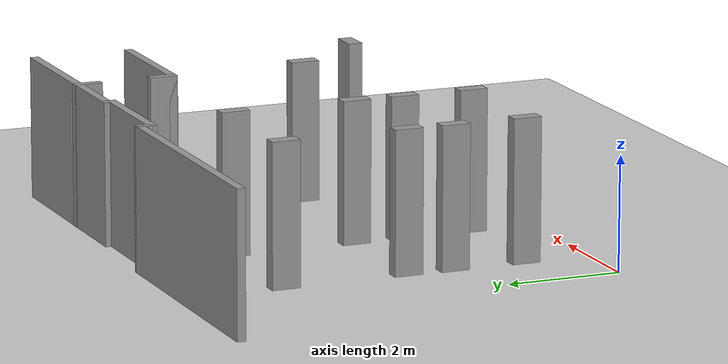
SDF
<sdf version="1.7">
 <world name="default">
  <model name="ground_plane">
   <static>1</static>
   <link name="link">
    <collision name="collision">
     <geometry><plane><normal>0 0 1</normal><size>100 100</size></plane></geometry>
     <surface><friction><ode><mu>100</mu><mu2>50</mu2></ode></friction></surface>
    </collision>
    <visual name="visual">
     <cast_shadows>0</cast_shadows>
     <geometry><plane><normal>0 0 1</normal><size>100 100</size></plane></geometry>
     <material>
      <script><uri>file://media/materials/scripts/gazebo.material</uri><name>Gazebo/Grey</name></script>
     </material>
    </visual>
   </link>
  </model>
  <model name="Level1">
   <link name="Wall_10">
    <pose>4.88325 7.14657 0 0 0 -1.5708</pose>
    <visual name="Wall_10_Visual">
     <pose>0 0 1.25 0 -0 0</pose>
     <geometry><box><size>0.25 0.15 2.5</size></box></geometry>
     <material>
      <script><uri>file://media/materials/scripts/gazebo.material</uri><name>Gazebo/Grey</name></script>
      <ambient>1 1 1 1</ambient>
      <shader type="pixel"/>
     </material>
     <meta><layer>0</layer></meta>
    </visual>
    <collision name="Wall_10_Collision">
     <pose>0 0 1.25 0 -0 0</pose>
     <geometry><box><size>0.25 0.15 2.5</size></box></geometry>
     <surface>
      <friction>
       <ode><mu>1</mu><mu2>1</mu2><fdir1>0 0 0</fdir1><slip1>0</slip1><slip2>0</slip2></ode>
       <torsional>
        <coefficient>1</coefficient>
        <patch_radius>0</patch_radius>
        <surface_radius>0</surface_radius>
        <use_patch_radius>1</use_patch_radius>
        <ode><slip>0</slip></ode>
       </torsional>
      </friction>
      <bounce><restitution_coefficient>0</restitution_coefficient><threshold>1e+06</threshold></bounce>
      <contact>
       <collide_without_contact>0</collide_without_contact>
       <collide_without_contact_bitmask>1</collide_without_contact_bitmask>
       <collide_bitmask>1</collide_bitmask>
       <ode>
        <soft_cfm>0</soft_cfm>
        <soft_erp>0.2</soft_erp>
        <kp>1e+13</kp>
        <kd>1</kd>
        <max_vel>0.01</max_vel>
        <min_depth>0</min_depth>
       </ode>
       <bullet>
        <split_impulse>1</split_impulse>
        <split_impulse_penetration_threshold>-0.01</split_impulse_penetration_threshold>
        <soft_cfm>0</soft_cfm>
        <soft_erp>0.2</soft_erp>
        <kp>1e+13</kp>
        <kd>1</kd>
       </bullet>
      </contact>
     </surface>
    </collision>
   </link>
   <link name="Wall_11">
    <pose>3.95825 7.09657 0 0 -0 3.14159</pose>
    <visual name="Wall_11_Visual">
     <pose>0 0 1.25 0 -0 0</pose>
     <geometry><box><size>2 0.15 2.5</size></box></geometry>
     <material>
      <script><uri>file://media/materials/scripts/gazebo.material</uri><name>Gazebo/Grey</name></script>
      <ambient>1 1 1 1</ambient>
      <shader type="pixel"/>
     </material>
     <meta><layer>0</layer></meta>
    </visual>
    <collision name="Wall_11_Collision">
     <pose>0 0 1.25 0 -0 0</pose>
     <geometry><box><size>2 0.15 2.5</size></box></geometry>
     <surface>
      <friction>
       <ode><mu>1</mu><mu2>1</mu2><fdir1>0 0 0</fdir1><slip1>0</slip1><slip2>0</slip2></ode>
       <torsional>
        <coefficient>1</coefficient>
        <patch_radius>0</patch_radius>
        <surface_radius>0</surface_radius>
        <use_patch_radius>1</use_patch_radius>
        <ode><slip>0</slip></ode>
       </torsional>
      </friction>
      <bounce><restitution_coefficient>0</restitution_coefficient><threshold>1e+06</threshold></bounce>
      <contact>
       <collide_without_contact>0</collide_without_contact>
       <collide_without_contact_bitmask>1</collide_without_contact_bitmask>
       <collide_bitmask>1</collide_bitmask>
       <ode>
        <soft_cfm>0</soft_cfm>
        <soft_erp>0.2</soft_erp>
        <kp>1e+13</kp>
        <kd>1</kd>
        <max_vel>0.01</max_vel>
        <min_depth>0</min_depth>
       </ode>
       <bullet>
        <split_impulse>1</split_impulse>
        <split_impulse_penetration_threshold>-0.01</split_impulse_penetration_threshold>
        <soft_cfm>0</soft_cfm>
        <soft_erp>0.2</soft_erp>
        <kp>1e+13</kp>
        <kd>1</kd>
       </bullet>
      </contact>
     </surface>
    </collision>
   </link>
   <link name="Wall_12">
    <pose>3.03333 7.19816 0 0 -0 1.57002</pose>
    <visual name="Wall_12_Visual">
     <pose>0 0 1.25 0 -0 0</pose>
     <geometry><box><size>0.353181 0.15 2.5</size></box></geometry>
     <material>
      <script><uri>file://media/materials/scripts/gazebo.material</uri><name>Gazebo/Grey</name></script>
      <ambient>1 1 1 1</ambient>
      <shader type="pixel"/>
     </material>
     <meta><layer>0</layer></meta>
    </visual>
    <collision name="Wall_12_Collision">
     <pose>0 0 1.25 0 -0 0</pose>
     <geometry><box><size>0.353181 0.15 2.5</size></box></geometry>
     <surface>
      <friction>
       <ode><mu>1</mu><mu2>1</mu2><fdir1>0 0 0</fdir1><slip1>0</slip1><slip2>0</slip2></ode>
       <torsional>
        <coefficient>1</coefficient>
        <patch_radius>0</patch_radius>
        <surface_radius>0</surface_radius>
        <use_patch_radius>1</use_patch_radius>
        <ode><slip>0</slip></ode>
       </torsional>
      </friction>
      <bounce><restitution_coefficient>0</restitution_coefficient><threshold>1e+06</threshold></bounce>
      <contact>
       <collide_without_contact>0</collide_without_contact>
       <collide_without_contact_bitmask>1</collide_without_contact_bitmask>
       <collide_bitmask>1</collide_bitmask>
       <ode>
        <soft_cfm>0</soft_cfm>
        <soft_erp>0.2</soft_erp>
        <kp>1e+13</kp>
        <kd>1</kd>
        <max_vel>0.01</max_vel>
        <min_depth>0</min_depth>
       </ode>
       <bullet>
        <split_impulse>1</split_impulse>
        <split_impulse_penetration_threshold>-0.01</split_impulse_penetration_threshold>
        <soft_cfm>0</soft_cfm>
        <soft_erp>0.2</soft_erp>
        <kp>1e+13</kp>
        <kd>1</kd>
       </bullet>
      </contact>
     </surface>
    </collision>
   </link>
   <link name="Wall_13">
    <pose>0.801445 7.30179 0 0 -0 3.14068</pose>
    <visual name="Wall_13_Visual">
     <pose>0 0 1.25 0 -0 0</pose>
     <geometry><box><size>4.61393 0.15 2.5</size></box></geometry>
     <material>
      <script><uri>file://media/materials/scripts/gazebo.material</uri><name>Gazebo/Grey</name></script>
      <ambient>1 1 1 1</ambient>
      <shader type="pixel"/>
     </material>
     <meta><layer>0</layer></meta>
    </visual>
    <collision name="Wall_13_Collision">
     <pose>0 0 1.25 0 -0 0</pose>
     <geometry><box><size>4.61393 0.15 2.5</size></box></geometry>
     <surface>
      <friction>
       <ode><mu>1</mu><mu2>1</mu2><fdir1>0 0 0</fdir1><slip1>0</slip1><slip2>0</slip2></ode>
       <torsional>
        <coefficient>1</coefficient>
        <patch_radius>0</patch_radius>
        <surface_radius>0</surface_radius>
        <use_patch_radius>1</use_patch_radius>
        <ode><slip>0</slip></ode>
       </torsional>
      </friction>
      <bounce><restitution_coefficient>0</restitution_coefficient><threshold>1e+06</threshold></bounce>
      <contact>
       <collide_without_contact>0</collide_without_contact>
       <collide_without_contact_bitmask>1</collide_without_contact_bitmask>
       <collide_bitmask>1</collide_bitmask>
       <ode>
        <soft_cfm>0</soft_cfm>
        <soft_erp>0.2</soft_erp>
        <kp>1e+13</kp>
        <kd>1</kd>
        <max_vel>0.01</max_vel>
        <min_depth>0</min_depth>
       </ode>
       <bullet>
        <split_impulse>1</split_impulse>
        <split_impulse_penetration_threshold>-0.01</split_impulse_penetration_threshold>
        <soft_cfm>0</soft_cfm>
        <soft_erp>0.2</soft_erp>
        <kp>1e+13</kp>
        <kd>1</kd>
       </bullet>
      </contact>
     </surface>
    </collision>
   </link>
   <link name="Wall_141">
    <pose>6.33227 5.65117 0 0 0 -1.5708</pose>
    <visual name="Wall_141_Visual">
     <pose>0 0 1.25 0 -0 0</pose>
     <geometry><box><size>0.5 0.15 2.5</size></box></geometry>
     <material>
      <script><uri>file://media/materials/scripts/gazebo.material</uri><name>Gazebo/Grey</name></script>
      <ambient>1 1 1 1</ambient>
      <shader type="pixel"/>
     </material>
     <meta><layer>0</layer></meta>
    </visual>
    <collision name="Wall_141_Collision">
     <pose>0 0 1.25 0 -0 0</pose>
     <geometry><box><size>0.5 0.15 2.5</size></box></geometry>
     <surface>
      <friction>
       <ode><mu>1</mu><mu2>1</mu2><fdir1>0 0 0</fdir1><slip1>0</slip1><slip2>0</slip2></ode>
       <torsional>
        <coefficient>1</coefficient>
        <patch_radius>0</patch_radius>
        <surface_radius>0</surface_radius>
        <use_patch_radius>1</use_patch_radius>
        <ode><slip>0</slip></ode>
       </torsional>
      </friction>
      <bounce><restitution_coefficient>0</restitution_coefficient><threshold>1e+06</threshold></bounce>
      <contact>
       <collide_without_contact>0</collide_without_contact>
       <collide_without_contact_bitmask>1</collide_without_contact_bitmask>
       <collide_bitmask>1</collide_bitmask>
       <ode>
        <soft_cfm>0</soft_cfm>
        <soft_erp>0.2</soft_erp>
        <kp>1e+13</kp>
        <kd>1</kd>
        <max_vel>0.01</max_vel>
        <min_depth>0</min_depth>
       </ode>
       <bullet>
        <split_impulse>1</split_impulse>
        <split_impulse_penetration_threshold>-0.01</split_impulse_penetration_threshold>
        <soft_cfm>0</soft_cfm>
        <soft_erp>0.2</soft_erp>
        <kp>1e+13</kp>
        <kd>1</kd>
       </bullet>
      </contact>
     </surface>
    </collision>
   </link>
   <link name="Wall_143">
    <pose>7.38227 5.47617 0 0 -0 0</pose>
    <visual name="Wall_143_Visual">
     <pose>0 0 1.25 0 -0 0</pose>
     <geometry><box><size>2.25 0.15 2.5</size></box></geometry>
     <material>
      <script><uri>file://media/materials/scripts/gazebo.material</uri><name>Gazebo/Grey</name></script>
      <ambient>1 1 1 1</ambient>
      <shader type="pixel"/>
     </material>
     <meta><layer>0</layer></meta>
    </visual>
    <collision name="Wall_143_Collision">
     <pose>0 0 1.25 0 -0 0</pose>
     <geometry><box><size>2.25 0.15 2.5</size></box></geometry>
     <surface>
      <friction>
       <ode><mu>1</mu><mu2>1</mu2><fdir1>0 0 0</fdir1><slip1>0</slip1><slip2>0</slip2></ode>
       <torsional>
        <coefficient>1</coefficient>
        <patch_radius>0</patch_radius>
        <surface_radius>0</surface_radius>
        <use_patch_radius>1</use_patch_radius>
        <ode><slip>0</slip></ode>
       </torsional>
      </friction>
      <bounce><restitution_coefficient>0</restitution_coefficient><threshold>1e+06</threshold></bounce>
      <contact>
       <collide_without_contact>0</collide_without_contact>
       <collide_without_contact_bitmask>1</collide_without_contact_bitmask>
       <collide_bitmask>1</collide_bitmask>
       <ode>
        <soft_cfm>0</soft_cfm>
        <soft_erp>0.2</soft_erp>
        <kp>1e+13</kp>
        <kd>1</kd>
        <max_vel>0.01</max_vel>
        <min_depth>0</min_depth>
       </ode>
       <bullet>
        <split_impulse>1</split_impulse>
        <split_impulse_penetration_threshold>-0.01</split_impulse_penetration_threshold>
        <soft_cfm>0</soft_cfm>
        <soft_erp>0.2</soft_erp>
        <kp>1e+13</kp>
        <kd>1</kd>
       </bullet>
      </contact>
     </surface>
    </collision>
   </link>
   <link name="Wall_145">
    <pose>6.29986 7.02972 0 0 0 -1.5708</pose>
    <visual name="Wall_145_Visual">
     <pose>0 0 1.25 0 -0 0</pose>
     <geometry><box><size>0.5 0.15 2.5</size></box></geometry>
     <material>
      <script><uri>file://media/materials/scripts/gazebo.material</uri><name>Gazebo/Grey</name></script>
      <ambient>1 1 1 1</ambient>
      <shader type="pixel"/>
     </material>
     <meta><layer>0</layer></meta>
    </visual>
    <collision name="Wall_145_Collision">
     <pose>0 0 1.25 0 -0 0</pose>
     <geometry><box><size>0.5 0.15 2.5</size></box></geometry>
     <surface>
      <friction>
       <ode><mu>1</mu><mu2>1</mu2><fdir1>0 0 0</fdir1><slip1>0</slip1><slip2>0</slip2></ode>
       <torsional>
        <coefficient>1</coefficient>
        <patch_radius>0</patch_radius>
        <surface_radius>0</surface_radius>
        <use_patch_radius>1</use_patch_radius>
        <ode><slip>0</slip></ode>
       </torsional>
      </friction>
      <bounce><restitution_coefficient>0</restitution_coefficient><threshold>1e+06</threshold></bounce>
      <contact>
       <collide_without_contact>0</collide_without_contact>
       <collide_without_contact_bitmask>1</collide_without_contact_bitmask>
       <collide_bitmask>1</collide_bitmask>
       <ode>
        <soft_cfm>0</soft_cfm>
        <soft_erp>0.2</soft_erp>
        <kp>1e+13</kp>
        <kd>1</kd>
        <max_vel>0.01</max_vel>
        <min_depth>0</min_depth>
       </ode>
       <bullet>
        <split_impulse>1</split_impulse>
        <split_impulse_penetration_threshold>-0.01</split_impulse_penetration_threshold>
        <soft_cfm>0</soft_cfm>
        <soft_erp>0.2</soft_erp>
        <kp>1e+13</kp>
        <kd>1</kd>
       </bullet>
      </contact>
     </surface>
    </collision>
   </link>
   <link name="Wall_147_clone_clone">
    <pose>1.26054 5.46735 0 0 -0 1.5708</pose>
    <visual name="Wall_147_Visual">
     <pose>0 0 1.25 0 -0 0</pose>
     <geometry><box><size>0.5 0.25 2.5</size></box></geometry>
     <material>
      <script><uri>file://media/materials/scripts/gazebo.material</uri><name>Gazebo/Grey</name></script>
      <ambient>1 1 1 1</ambient>
      <shader type="pixel"/>
     </material>
     <meta><layer>0</layer></meta>
    </visual>
    <collision name="Wall_147_Collision">
     <pose>0 0 1.25 0 -0 0</pose>
     <geometry><box><size>0.5 0.25 2.5</size></box></geometry>
     <surface>
      <friction>
       <ode><mu>1</mu><mu2>1</mu2><fdir1>0 0 0</fdir1><slip1>0</slip1><slip2>0</slip2></ode>
       <torsional>
        <coefficient>1</coefficient>
        <patch_radius>0</patch_radius>
        <surface_radius>0</surface_radius>
        <use_patch_radius>1</use_patch_radius>
        <ode><slip>0</slip></ode>
       </torsional>
      </friction>
      <bounce><restitution_coefficient>0</restitution_coefficient><threshold>1e+06</threshold></bounce>
      <contact>
       <collide_without_contact>0</collide_without_contact>
       <collide_without_contact_bitmask>1</collide_without_contact_bitmask>
       <collide_bitmask>1</collide_bitmask>
       <ode>
        <soft_cfm>0</soft_cfm>
        <soft_erp>0.2</soft_erp>
        <kp>1e+13</kp>
        <kd>1</kd>
        <max_vel>0.01</max_vel>
        <min_depth>0</min_depth>
       </ode>
       <bullet>
        <split_impulse>1</split_impulse>
        <split_impulse_penetration_threshold>-0.01</split_impulse_penetration_threshold>
        <soft_cfm>0</soft_cfm>
        <soft_erp>0.2</soft_erp>
        <kp>1e+13</kp>
        <kd>1</kd>
       </bullet>
      </contact>
     </surface>
    </collision>
   </link>
   <link name="Wall_147_clone_clone_0">
    <pose>3.50373 5.46387 0 0 -0 1.5708</pose>
    <visual name="Wall_147_Visual">
     <pose>0 0 1.25 0 -0 0</pose>
     <geometry><box><size>0.5 0.25 2.5</size></box></geometry>
     <material>
      <script><uri>file://media/materials/scripts/gazebo.material</uri><name>Gazebo/Grey</name></script>
      <ambient>1 1 1 1</ambient>
      <shader type="pixel"/>
     </material>
     <meta><layer>0</layer></meta>
    </visual>
    <collision name="Wall_147_Collision">
     <pose>0 0 1.25 0 -0 0</pose>
     <geometry><box><size>0.5 0.25 2.5</size></box></geometry>
     <surface>
      <friction>
       <ode><mu>1</mu><mu2>1</mu2><fdir1>0 0 0</fdir1><slip1>0</slip1><slip2>0</slip2></ode>
       <torsional>
        <coefficient>1</coefficient>
        <patch_radius>0</patch_radius>
        <surface_radius>0</surface_radius>
        <use_patch_radius>1</use_patch_radius>
        <ode><slip>0</slip></ode>
       </torsional>
      </friction>
      <bounce><restitution_coefficient>0</restitution_coefficient><threshold>1e+06</threshold></bounce>
      <contact>
       <collide_without_contact>0</collide_without_contact>
       <collide_without_contact_bitmask>1</collide_without_contact_bitmask>
       <collide_bitmask>1</collide_bitmask>
       <ode>
        <soft_cfm>0</soft_cfm>
        <soft_erp>0.2</soft_erp>
        <kp>1e+13</kp>
        <kd>1</kd>
        <max_vel>0.01</max_vel>
        <min_depth>0</min_depth>
       </ode>
       <bullet>
        <split_impulse>1</split_impulse>
        <split_impulse_penetration_threshold>-0.01</split_impulse_penetration_threshold>
        <soft_cfm>0</soft_cfm>
        <soft_erp>0.2</soft_erp>
        <kp>1e+13</kp>
        <kd>1</kd>
       </bullet>
      </contact>
     </surface>
    </collision>
   </link>
   <link name="Wall_147_clone_clone_10">
    <pose>3.48563 1.13352 0 0 -0 1.5708</pose>
    <visual name="Wall_147_Visual">
     <pose>0 0 1.25 0 -0 0</pose>
     <geometry><box><size>0.5 0.25 2.5</size></box></geometry>
     <material>
      <script><uri>file://media/materials/scripts/gazebo.material</uri><name>Gazebo/Grey</name></script>
      <ambient>1 1 1 1</ambient>
      <shader type="pixel"/>
     </material>
     <meta><layer>0</layer></meta>
    </visual>
    <collision name="Wall_147_Collision">
     <pose>0 0 1.25 0 -0 0</pose>
     <geometry><box><size>0.5 0.25 2.5</size></box></geometry>
     <surface>
      <friction>
       <ode><mu>1</mu><mu2>1</mu2><fdir1>0 0 0</fdir1><slip1>0</slip1><slip2>0</slip2></ode>
       <torsional>
        <coefficient>1</coefficient>
        <patch_radius>0</patch_radius>
        <surface_radius>0</surface_radius>
        <use_patch_radius>1</use_patch_radius>
        <ode><slip>0</slip></ode>
       </torsional>
      </friction>
      <bounce><restitution_coefficient>0</restitution_coefficient><threshold>1e+06</threshold></bounce>
      <contact>
       <collide_without_contact>0</collide_without_contact>
       <collide_without_contact_bitmask>1</collide_without_contact_bitmask>
       <collide_bitmask>1</collide_bitmask>
       <ode>
        <soft_cfm>0</soft_cfm>
        <soft_erp>0.2</soft_erp>
        <kp>1e+13</kp>
        <kd>1</kd>
        <max_vel>0.01</max_vel>
        <min_depth>0</min_depth>
       </ode>
       <bullet>
        <split_impulse>1</split_impulse>
        <split_impulse_penetration_threshold>-0.01</split_impulse_penetration_threshold>
        <soft_cfm>0</soft_cfm>
        <soft_erp>0.2</soft_erp>
        <kp>1e+13</kp>
        <kd>1</kd>
       </bullet>
      </contact>
     </surface>
    </collision>
   </link>
   <link name="Wall_147_clone_clone_11">
    <pose>6.54453 2.96693 0 0 -0 1.5708</pose>
    <visual name="Wall_147_Visual">
     <pose>0 0 1.25 0 -0 0</pose>
     <geometry><box><size>0.5 0.25 2.5</size></box></geometry>
     <material>
      <script><uri>file://media/materials/scripts/gazebo.material</uri><name>Gazebo/Grey</name></script>
      <ambient>1 1 1 1</ambient>
      <shader type="pixel"/>
     </material>
     <meta><layer>0</layer></meta>
    </visual>
    <collision name="Wall_147_Collision">
     <pose>0 0 1.25 0 -0 0</pose>
     <geometry><box><size>0.5 0.25 2.5</size></box></geometry>
     <surface>
      <friction>
       <ode><mu>1</mu><mu2>1</mu2><fdir1>0 0 0</fdir1><slip1>0</slip1><slip2>0</slip2></ode>
       <torsional>
        <coefficient>1</coefficient>
        <patch_radius>0</patch_radius>
        <surface_radius>0</surface_radius>
        <use_patch_radius>1</use_patch_radius>
        <ode><slip>0</slip></ode>
       </torsional>
      </friction>
      <bounce><restitution_coefficient>0</restitution_coefficient><threshold>1e+06</threshold></bounce>
      <contact>
       <collide_without_contact>0</collide_without_contact>
       <collide_without_contact_bitmask>1</collide_without_contact_bitmask>
       <collide_bitmask>1</collide_bitmask>
       <ode>
        <soft_cfm>0</soft_cfm>
        <soft_erp>0.2</soft_erp>
        <kp>1e+13</kp>
        <kd>1</kd>
        <max_vel>0.01</max_vel>
        <min_depth>0</min_depth>
       </ode>
       <bullet>
        <split_impulse>1</split_impulse>
        <split_impulse_penetration_threshold>-0.01</split_impulse_penetration_threshold>
        <soft_cfm>0</soft_cfm>
        <soft_erp>0.2</soft_erp>
        <kp>1e+13</kp>
        <kd>1</kd>
       </bullet>
      </contact>
     </surface>
    </collision>
   </link>
   <link name="Wall_147_clone_clone_23_clone_1">
    <pose>7.6752 1.60236 0 0 -0 4e-06</pose>
    <inertial>
     <mass>1</mass>
     <inertia><ixx>1</ixx><ixy>0</ixy><ixz>0</ixz><iyy>1</iyy><iyz>0</iyz><izz>1</izz></inertia>
    </inertial>
    <visual name="Wall_147_Visual">
     <pose>0 0 1.25 0 -0 0</pose>
     <geometry><box><size>0.5 0.25 2.5</size></box></geometry>
     <material>
      <script><uri>file://media/materials/scripts/gazebo.material</uri><name>Gazebo/Grey</name></script>
      <ambient>1 1 1 1</ambient>
      <shader type="pixel"><normal_map>__default__</normal_map></shader>
     </material>
     <meta><layer>0</layer></meta>
    </visual>
    <collision name="Wall_147_Collision">
     <pose>0 0 1.25 0 -0 0</pose>
     <geometry><box><size>0.5 0.25 2.5</size></box></geometry>
     <surface>
      <friction>
       <ode><mu>1</mu><mu2>1</mu2><fdir1>0 0 0</fdir1><slip1>0</slip1><slip2>0</slip2></ode>
       <torsional>
        <coefficient>1</coefficient>
        <patch_radius>0</patch_radius>
        <surface_radius>0</surface_radius>
        <use_patch_radius>1</use_patch_radius>
        <ode><slip>0</slip></ode>
       </torsional>
      </friction>
      <bounce><restitution_coefficient>0</restitution_coefficient><threshold>1e+06</threshold></bounce>
      <contact>
       <collide_without_contact>0</collide_without_contact>
       <collide_without_contact_bitmask>1</collide_without_contact_bitmask>
       <collide_bitmask>1</collide_bitmask>
       <ode>
        <soft_cfm>0</soft_cfm>
        <soft_erp>0.2</soft_erp>
        <kp>1e+13</kp>
        <kd>1</kd>
        <max_vel>0.01</max_vel>
        <min_depth>0</min_depth>
       </ode>
       <bullet>
        <split_impulse>1</split_impulse>
        <split_impulse_penetration_threshold>-0.01</split_impulse_penetration_threshold>
        <soft_cfm>0</soft_cfm>
        <soft_erp>0.2</soft_erp>
        <kp>1e+13</kp>
        <kd>1</kd>
       </bullet>
      </contact>
     </surface>
    </collision>
   </link>
   <link name="Wall_147_clone_clone_3">
    <pose>1.26809 3.28042 0 0 -0 1.5708</pose>
    <visual name="Wall_147_Visual">
     <pose>0 0 1.25 0 -0 0</pose>
     <geometry><box><size>0.5 0.25 2.5</size></box></geometry>
     <material>
      <script><uri>file://media/materials/scripts/gazebo.material</uri><name>Gazebo/Grey</name></script>
      <ambient>1 1 1 1</ambient>
      <shader type="pixel"/>
     </material>
     <meta><layer>0</layer></meta>
    </visual>
    <collision name="Wall_147_Collision">
     <pose>0 0 1.25 0 -0 0</pose>
     <geometry><box><size>0.5 0.25 2.5</size></box></geometry>
     <surface>
      <friction>
       <ode><mu>1</mu><mu2>1</mu2><fdir1>0 0 0</fdir1><slip1>0</slip1><slip2>0</slip2></ode>
       <torsional>
        <coefficient>1</coefficient>
        <patch_radius>0</patch_radius>
        <surface_radius>0</surface_radius>
        <use_patch_radius>1</use_patch_radius>
        <ode><slip>0</slip></ode>
       </torsional>
      </friction>
      <bounce><restitution_coefficient>0</restitution_coefficient><threshold>1e+06</threshold></bounce>
      <contact>
       <collide_without_contact>0</collide_without_contact>
       <collide_without_contact_bitmask>1</collide_without_contact_bitmask>
       <collide_bitmask>1</collide_bitmask>
       <ode>
        <soft_cfm>0</soft_cfm>
        <soft_erp>0.2</soft_erp>
        <kp>1e+13</kp>
        <kd>1</kd>
        <max_vel>0.01</max_vel>
        <min_depth>0</min_depth>
       </ode>
       <bullet>
        <split_impulse>1</split_impulse>
        <split_impulse_penetration_threshold>-0.01</split_impulse_penetration_threshold>
        <soft_cfm>0</soft_cfm>
        <soft_erp>0.2</soft_erp>
        <kp>1e+13</kp>
        <kd>1</kd>
       </bullet>
      </contact>
     </surface>
    </collision>
   </link>
   <link name="Wall_147_clone_clone_4">
    <pose>3.48563 3.28042 0 0 -0 1.5708</pose>
    <visual name="Wall_147_Visual">
     <pose>0 0 1.25 0 -0 0</pose>
     <geometry><box><size>0.5 0.25 2.5</size></box></geometry>
     <material>
      <script><uri>file://media/materials/scripts/gazebo.material</uri><name>Gazebo/Grey</name></script>
      <ambient>1 1 1 1</ambient>
      <shader type="pixel"/>
     </material>
     <meta><layer>0</layer></meta>
    </visual>
    <collision name="Wall_147_Collision">
     <pose>0 0 1.25 0 -0 0</pose>
     <geometry><box><size>0.5 0.25 2.5</size></box></geometry>
     <surface>
      <friction>
       <ode><mu>1</mu><mu2>1</mu2><fdir1>0 0 0</fdir1><slip1>0</slip1><slip2>0</slip2></ode>
       <torsional>
        <coefficient>1</coefficient>
        <patch_radius>0</patch_radius>
        <surface_radius>0</surface_radius>
        <use_patch_radius>1</use_patch_radius>
        <ode><slip>0</slip></ode>
       </torsional>
      </friction>
      <bounce><restitution_coefficient>0</restitution_coefficient><threshold>1e+06</threshold></bounce>
      <contact>
       <collide_without_contact>0</collide_without_contact>
       <collide_without_contact_bitmask>1</collide_without_contact_bitmask>
       <collide_bitmask>1</collide_bitmask>
       <ode>
        <soft_cfm>0</soft_cfm>
        <soft_erp>0.2</soft_erp>
        <kp>1e+13</kp>
        <kd>1</kd>
        <max_vel>0.01</max_vel>
        <min_depth>0</min_depth>
       </ode>
       <bullet>
        <split_impulse>1</split_impulse>
        <split_impulse_penetration_threshold>-0.01</split_impulse_penetration_threshold>
        <soft_cfm>0</soft_cfm>
        <soft_erp>0.2</soft_erp>
        <kp>1e+13</kp>
        <kd>1</kd>
       </bullet>
      </contact>
     </surface>
    </collision>
   </link>
   <link name="Wall_147_clone_clone_6">
    <pose>1.24863 2.44763 0 0 -0 1.5708</pose>
    <visual name="Wall_147_Visual">
     <pose>0 0 1.25 0 -0 0</pose>
     <geometry><box><size>0.5 0.25 2.5</size></box></geometry>
     <material>
      <script><uri>file://media/materials/scripts/gazebo.material</uri><name>Gazebo/Grey</name></script>
      <ambient>1 1 1 1</ambient>
      <shader type="pixel"/>
     </material>
     <meta><layer>0</layer></meta>
    </visual>
    <collision name="Wall_147_Collision">
     <pose>0 0 1.25 0 -0 0</pose>
     <geometry><box><size>0.5 0.25 2.5</size></box></geometry>
     <surface>
      <friction>
       <ode><mu>1</mu><mu2>1</mu2><fdir1>0 0 0</fdir1><slip1>0</slip1><slip2>0</slip2></ode>
       <torsional>
        <coefficient>1</coefficient>
        <patch_radius>0</patch_radius>
        <surface_radius>0</surface_radius>
        <use_patch_radius>1</use_patch_radius>
        <ode><slip>0</slip></ode>
       </torsional>
      </friction>
      <bounce><restitution_coefficient>0</restitution_coefficient><threshold>1e+06</threshold></bounce>
      <contact>
       <collide_without_contact>0</collide_without_contact>
       <collide_without_contact_bitmask>1</collide_without_contact_bitmask>
       <collide_bitmask>1</collide_bitmask>
       <ode>
        <soft_cfm>0</soft_cfm>
        <soft_erp>0.2</soft_erp>
        <kp>1e+13</kp>
        <kd>1</kd>
        <max_vel>0.01</max_vel>
        <min_depth>0</min_depth>
       </ode>
       <bullet>
        <split_impulse>1</split_impulse>
        <split_impulse_penetration_threshold>-0.01</split_impulse_penetration_threshold>
        <soft_cfm>0</soft_cfm>
        <soft_erp>0.2</soft_erp>
        <kp>1e+13</kp>
        <kd>1</kd>
       </bullet>
      </contact>
     </surface>
    </collision>
   </link>
   <link name="Wall_147_clone_clone_7">
    <pose>3.48563 2.4022 0 0 -0 1.5708</pose>
    <visual name="Wall_147_Visual">
     <pose>0 0 1.25 0 -0 0</pose>
     <geometry><box><size>0.5 0.25 2.5</size></box></geometry>
     <material>
      <script><uri>file://media/materials/scripts/gazebo.material</uri><name>Gazebo/Grey</name></script>
      <ambient>1 1 1 1</ambient>
      <shader type="pixel"/>
     </material>
     <meta><layer>0</layer></meta>
    </visual>
    <collision name="Wall_147_Collision">
     <pose>0 0 1.25 0 -0 0</pose>
     <geometry><box><size>0.5 0.25 2.5</size></box></geometry>
     <surface>
      <friction>
       <ode><mu>1</mu><mu2>1</mu2><fdir1>0 0 0</fdir1><slip1>0</slip1><slip2>0</slip2></ode>
       <torsional>
        <coefficient>1</coefficient>
        <patch_radius>0</patch_radius>
        <surface_radius>0</surface_radius>
        <use_patch_radius>1</use_patch_radius>
        <ode><slip>0</slip></ode>
       </torsional>
      </friction>
      <bounce><restitution_coefficient>0</restitution_coefficient><threshold>1e+06</threshold></bounce>
      <contact>
       <collide_without_contact>0</collide_without_contact>
       <collide_without_contact_bitmask>1</collide_without_contact_bitmask>
       <collide_bitmask>1</collide_bitmask>
       <ode>
        <soft_cfm>0</soft_cfm>
        <soft_erp>0.2</soft_erp>
        <kp>1e+13</kp>
        <kd>1</kd>
        <max_vel>0.01</max_vel>
        <min_depth>0</min_depth>
       </ode>
       <bullet>
        <split_impulse>1</split_impulse>
        <split_impulse_penetration_threshold>-0.01</split_impulse_penetration_threshold>
        <soft_cfm>0</soft_cfm>
        <soft_erp>0.2</soft_erp>
        <kp>1e+13</kp>
        <kd>1</kd>
       </bullet>
      </contact>
     </surface>
    </collision>
   </link>
   <link name="Wall_147_clone_clone_9">
    <pose>1.24893 1.15642 0 0 -0 1.5708</pose>
    <visual name="Wall_147_Visual">
     <pose>0 0 1.25 0 -0 0</pose>
     <geometry><box><size>0.5 0.25 2.5</size></box></geometry>
     <material>
      <script><uri>file://media/materials/scripts/gazebo.material</uri><name>Gazebo/Grey</name></script>
      <ambient>1 1 1 1</ambient>
      <shader type="pixel"/>
     </material>
     <meta><layer>0</layer></meta>
    </visual>
    <collision name="Wall_147_Collision">
     <pose>0 0 1.25 0 -0 0</pose>
     <geometry><box><size>0.5 0.25 2.5</size></box></geometry>
     <surface>
      <friction>
       <ode><mu>1</mu><mu2>1</mu2><fdir1>0 0 0</fdir1><slip1>0</slip1><slip2>0</slip2></ode>
       <torsional>
        <coefficient>1</coefficient>
        <patch_radius>0</patch_radius>
        <surface_radius>0</surface_radius>
        <use_patch_radius>1</use_patch_radius>
        <ode><slip>0</slip></ode>
       </torsional>
      </friction>
      <bounce><restitution_coefficient>0</restitution_coefficient><threshold>1e+06</threshold></bounce>
      <contact>
       <collide_without_contact>0</collide_without_contact>
       <collide_without_contact_bitmask>1</collide_without_contact_bitmask>
       <collide_bitmask>1</collide_bitmask>
       <ode>
        <soft_cfm>0</soft_cfm>
        <soft_erp>0.2</soft_erp>
        <kp>1e+13</kp>
        <kd>1</kd>
        <max_vel>0.01</max_vel>
        <min_depth>0</min_depth>
       </ode>
       <bullet>
        <split_impulse>1</split_impulse>
        <split_impulse_penetration_threshold>-0.01</split_impulse_penetration_threshold>
        <soft_cfm>0</soft_cfm>
        <soft_erp>0.2</soft_erp>
        <kp>1e+13</kp>
        <kd>1</kd>
       </bullet>
      </contact>
     </surface>
    </collision>
   </link>
   <link name="Wall_9">
    <pose>6.68325 7.19657 0 0 -0 3.14159</pose>
    <visual name="Wall_9_Visual">
     <pose>0 0 1.25 0 -0 0</pose>
     <geometry><box><size>3.75 0.15 2.5</size></box></geometry>
     <material>
      <script><uri>file://media/materials/scripts/gazebo.material</uri><name>Gazebo/Grey</name></script>
      <ambient>1 1 1 1</ambient>
      <shader type="pixel"/>
     </material>
     <meta><layer>0</layer></meta>
    </visual>
    <collision name="Wall_9_Collision">
     <pose>0 0 1.25 0 -0 0</pose>
     <geometry><box><size>3.75 0.15 2.5</size></box></geometry>
     <surface>
      <friction>
       <ode><mu>1</mu><mu2>1</mu2><fdir1>0 0 0</fdir1><slip1>0</slip1><slip2>0</slip2></ode>
       <torsional>
        <coefficient>1</coefficient>
        <patch_radius>0</patch_radius>
        <surface_radius>0</surface_radius>
        <use_patch_radius>1</use_patch_radius>
        <ode><slip>0</slip></ode>
       </torsional>
      </friction>
      <bounce><restitution_coefficient>0</restitution_coefficient><threshold>1e+06</threshold></bounce>
      <contact>
       <collide_without_contact>0</collide_without_contact>
       <collide_without_contact_bitmask>1</collide_without_contact_bitmask>
       <collide_bitmask>1</collide_bitmask>
       <ode>
        <soft_cfm>0</soft_cfm>
        <soft_erp>0.2</soft_erp>
        <kp>1e+13</kp>
        <kd>1</kd>
        <max_vel>0.01</max_vel>
        <min_depth>0</min_depth>
       </ode>
       <bullet>
        <split_impulse>1</split_impulse>
        <split_impulse_penetration_threshold>-0.01</split_impulse_penetration_threshold>
        <soft_cfm>0</soft_cfm>
        <soft_erp>0.2</soft_erp>
        <kp>1e+13</kp>
        <kd>1</kd>
       </bullet>
      </contact>
     </surface>
    </collision>
   </link>
   <static>1</static>
   <pose>-0.002726 0.011436 0 0 -0 0</pose>
  </model>
 </world>
</sdf>
